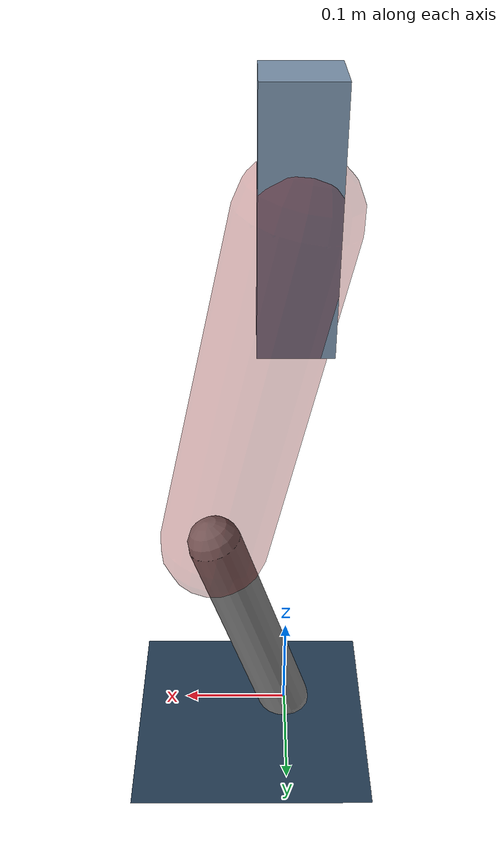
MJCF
<mujoco model="Hopper2D">
	<compiler inertiafromgeom="true" angle="radian" />
	<option timestep="0.001" integrator="implicit" cone="elliptic" solver="Newton" tolerance="1e-10" />

	<default>
		<geom contype="1" conaffinity="1" condim="3" friction="2 0.005 0.0001" solref="0.005 1" />
		<joint limited="true" damping="0.1" />
	</default>

	<asset>
		<texture name="skybox" type="skybox" builtin="gradient" rgb1=".4 .6 .8" rgb2="0 0 0" width="800" height="800" />
		<texture name="grid" type="2d" builtin="checker" rgb1=".1 .2 .3" rgb2=".2 .3 .4" width="300" height="300" mark="edge" markrgb=".2 .3 .4" />
		<material name="ground" texture="grid" texrepeat="1 1" texuniform="true" reflectance="0.1" />
		<material name="leg" rgba="0.5 0.6 0.7 1" />
	</asset>

	<worldbody>

		<geom name="floor" type="plane" size="5 5 0.25" material="ground" />

		<light directional="false" diffuse="0.8 0.8 0.8" specular="0.3 0.3 0.3" pos="0 0 2" dir="0 0 -1" />
		<light mode="targetbodycom" target="base" directional="false" diffuse="0.8 0.8 0.8" specular="0.3 0.3 0.3" pos="0 0 2" dir="0 0 -1" />

		<camera name="fixed" pos="0 -2 1" xyaxes="1 0 0 0 0 1" />
		<camera name="tracking" mode="trackcom" pos="0 -3 1" />

		<body name="root" pos="0 0 0.51100627746859">
			<joint name="slide_x" type="slide" axis="1 0 0" range="-100 100" />
			<joint name="slide_z" type="slide" axis="0 0 1" range="0 10" />

			<body name="base" pos="0 0 0">
				<geom name="torso" type="box" size="0.03 0.03 0.1" mass="2.615" material="leg" />

				<body name="link1" pos="0 0 0" euler="0 1.3541428388868095 0">
					<joint type="hinge" axis="0 -1 0" pos="0 0 0" name="hinge1" limited="true" range="-3.14 3.14" stiffness="0" damping="0.1" />
					<geom name="thigh" type="capsule" fromto="0 0 0 0.3131328655875639 0 0" size="0.05" rgba="0.5 0 0 0.3" mass="1.0244587370864227" />

					<body name="link2" pos="0.3131328655875639 0 0" euler="0 0.5336328796042867 0">
						<joint type="hinge" axis="0 -1 0" pos="0 0 0" name="hinge2" limited="true" range="-3.14 3.14" stiffness="0" damping="0.1" />
						<geom name="shank" type="capsule" fromto="0 0 0 0.21595220569375104 0 0" size="0.025" mass="0.41426176455500086" />

					</body>
				</body>
			</body>
		</body>
	</worldbody>

	<actuator>
		<motor name="torque1" joint="hinge1" ctrlrange="-49.18273027831256 49.18273027831256" ctrllimited="true" gear="1" />
		<motor name="torque2" joint="hinge2" ctrlrange="-137.32738327336432 137.32738327336432" ctrllimited="true" gear="1" />
	</actuator>
</mujoco>
